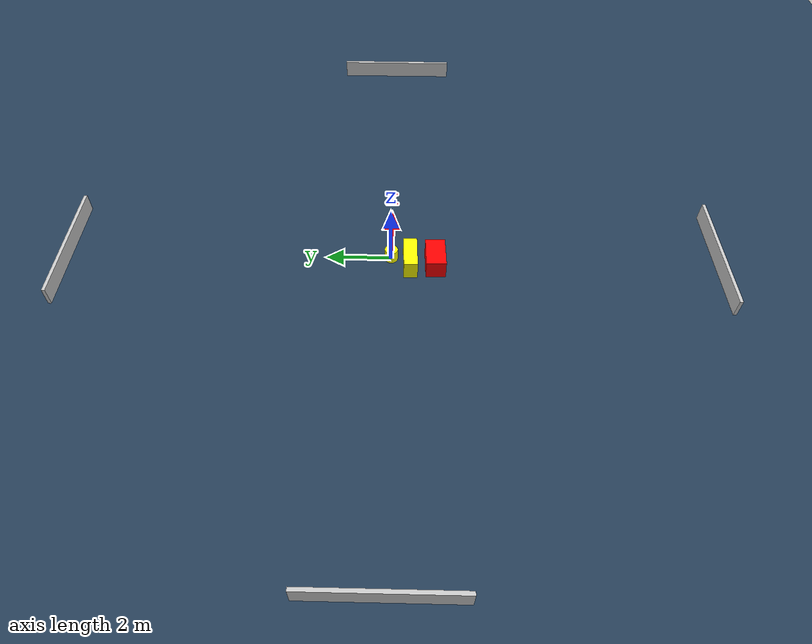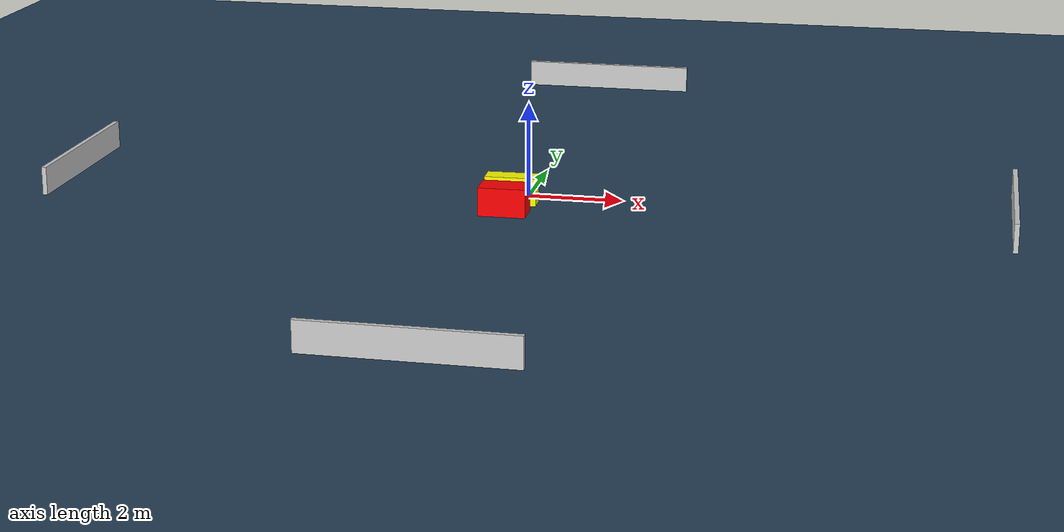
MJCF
<?xml version="1.0" ?>
<mujoco model="generated_environment">
  <option timestep="0.01" integrator="RK4" cone="elliptic"/>
  <default>
    <geom density="1"/>
  </default>
  <asset>
    <texture builtin="gradient" height="3072" name="skybox" rgb1="0.3 0.5 0.7" rgb2="0 0 0" type="skybox" width="512"/>
    <texture builtin="checker" height="300" name="groundplane" rgb1="0.2 0.3 0.4" rgb2="0.1 0.2 0.3" type="2d" width="300"/>
    <material name="groundplane" reflectance="0.2" texrepeat="5 5" texture="groundplane"/>
  </asset>
  <worldbody>
    <light dir="0 0 -1" directional="true" pos="0 0 1.5"/>
    <geom condim="3" friction="0.5 0.005 0.001" material="groundplane" name="floor" pos="0 0 0" size="0 0 0.05" type="plane"/>
    <body name="walls">
      <geom name="wall_1" condim="4" pos="-10.0 0.0 0.3" rgba="0.800000011920929 0.800000011920929 0.800000011920929 1.0" size="0.05 2.0 0.3" type="box"/>
      <geom name="wall_2" condim="4" pos="10.0 0.0 0.3" rgba="0.800000011920929 0.800000011920929 0.800000011920929 1.0" size="0.05 2.0 0.3" type="box"/>
      <geom name="wall_3" condim="4" pos="0.0 -10.0 0.3" rgba="0.800000011920929 0.800000011920929 0.800000011920929 1.0" size="2.0 0.05 0.3" type="box"/>
      <geom name="wall_4" condim="4" pos="0.0 10.0 0.3" rgba="0.800000011920929 0.800000011920929 0.800000011920929 1.0" size="2.0 0.05 0.3" type="box"/>
    </body>
    <body name="robot">
      <joint name="joint_x" type="slide" pos="0 0 0" axis="1 0 0"/>
      <joint name="joint_y" type="slide" pos="0 0 0" axis="0 1 0"/>
      <geom name="robot" type="cylinder" pos="0.0 0.0 0.2" size="0.2 0.2 0.0" mass="5.0" friction="1.0 0.005 0.0001" condim="4" rgba="1.0 1.0 0.0 1.0"/>
    </body>
    <body name="obstacle_1_movable">
      <geom name="obstacle_1_movable" condim="4" pos="-0.2386040470312022 -0.5834113532652617 0.3" euler="0 0 1.4249176828165933" friction="0.0 0.005 0.001" rgba="1.0 1.0 0.0 1.0" size="0.5350862754376904 0.2096016192561206 0.3" type="box" mass="0.1"/>
      <joint type="free"/>
    </body>
    <body name="obstacle_2_static">
      <geom name="obstacle_2_static" condim="4" pos="-0.2397423304379919 -1.3486030310175534 0.3" euler="0 0 91.37246049517383" friction="0.0 0.005 0.001" rgba="1.0 0.0 0.0 1.0" size="0.3022458094418748 0.49142286622678416 0.3" type="box"/>
    </body>
  </worldbody>
  <actuator>
    <motor name="actuator_x" joint="joint_x" gear="1" ctrlrange="-1 1"/>
    <motor name="actuator_y" joint="joint_y" gear="1" ctrlrange="-1 1"/>
  </actuator>
</mujoco>
